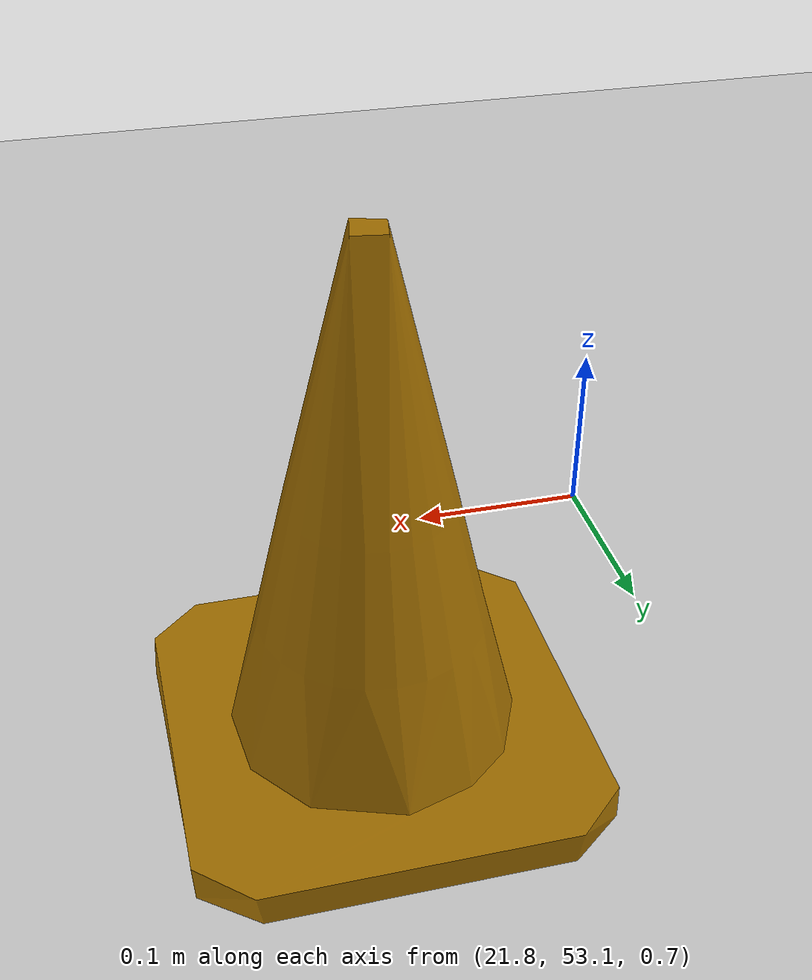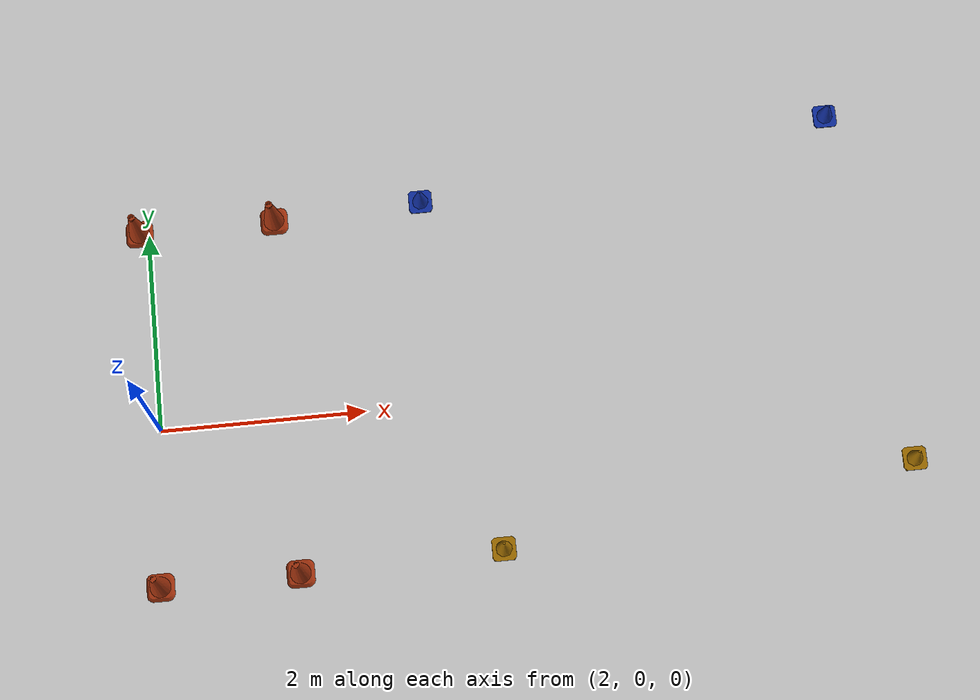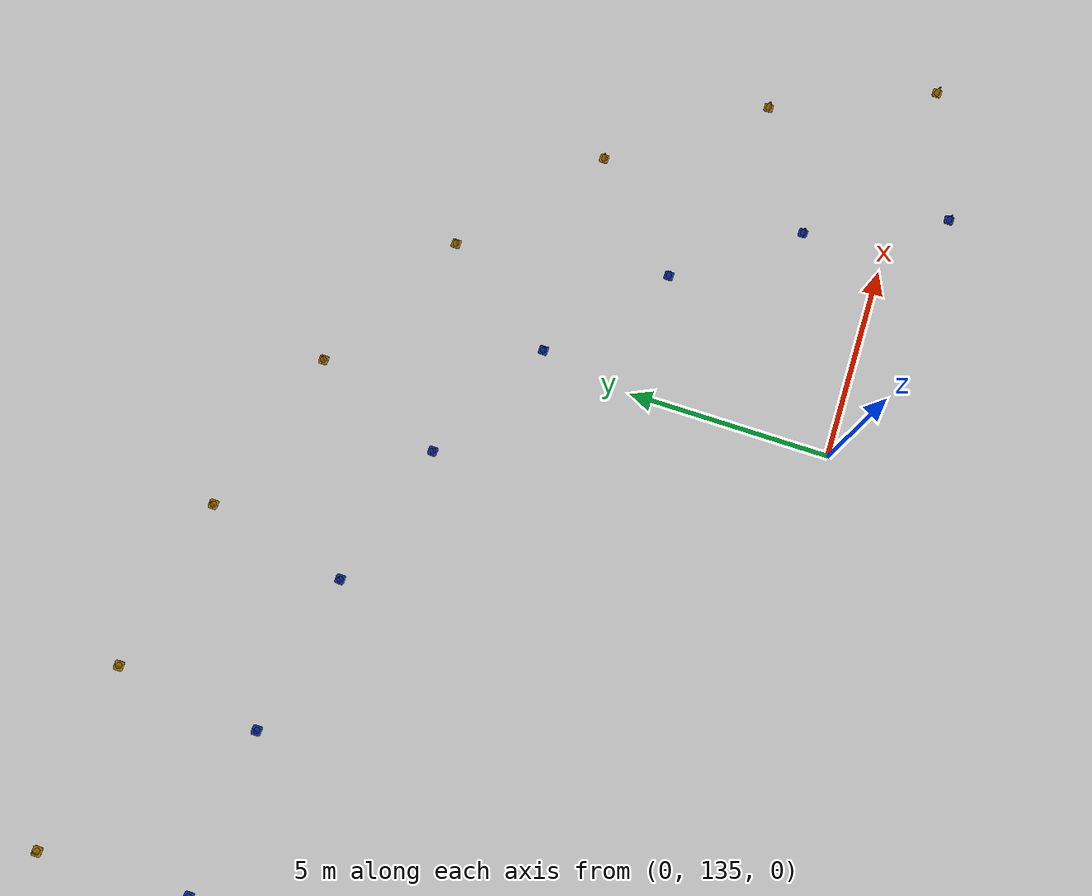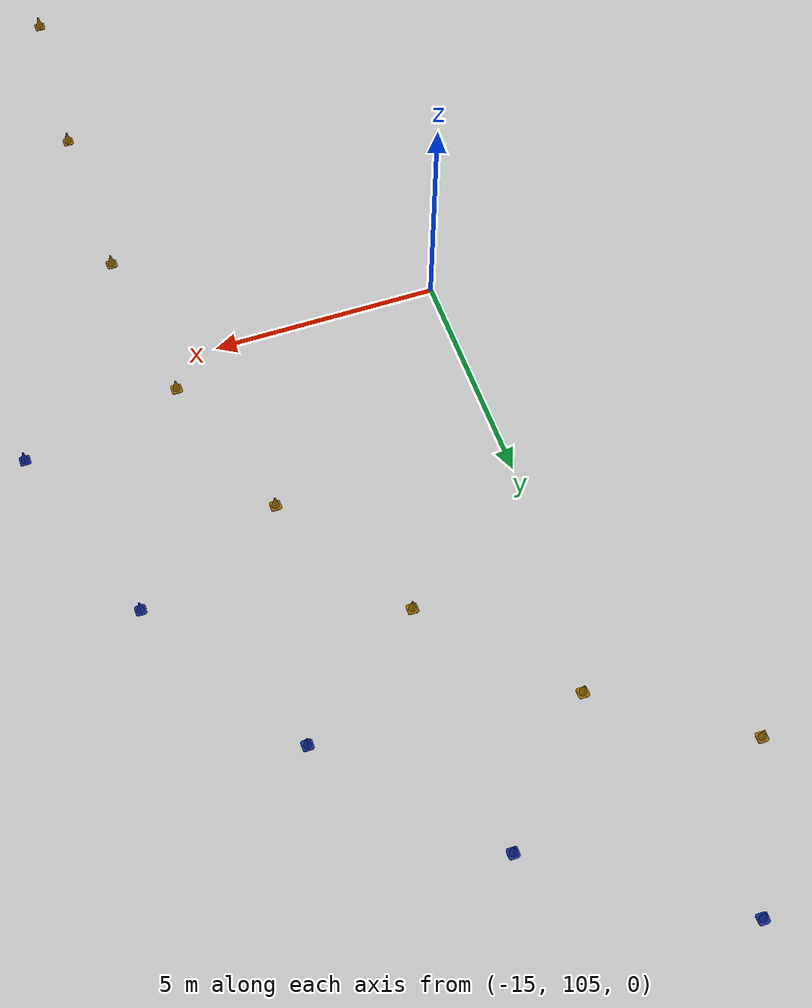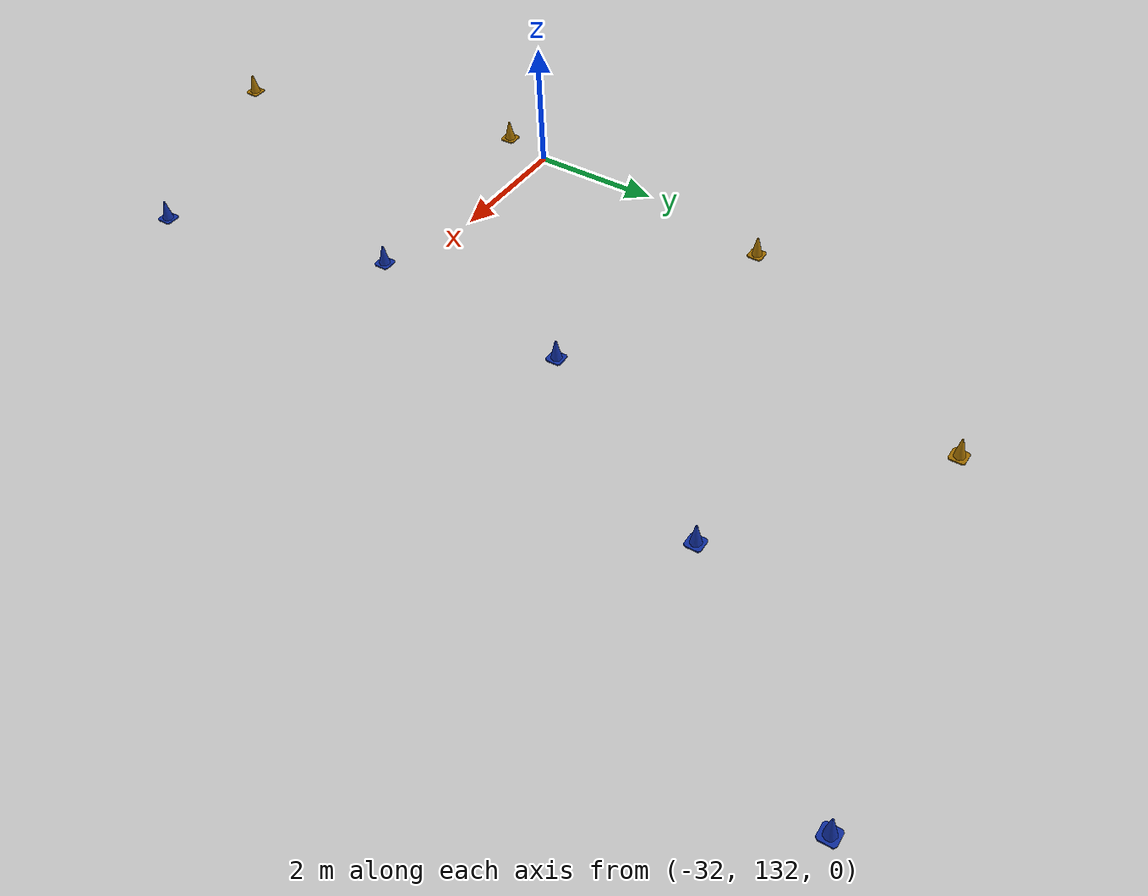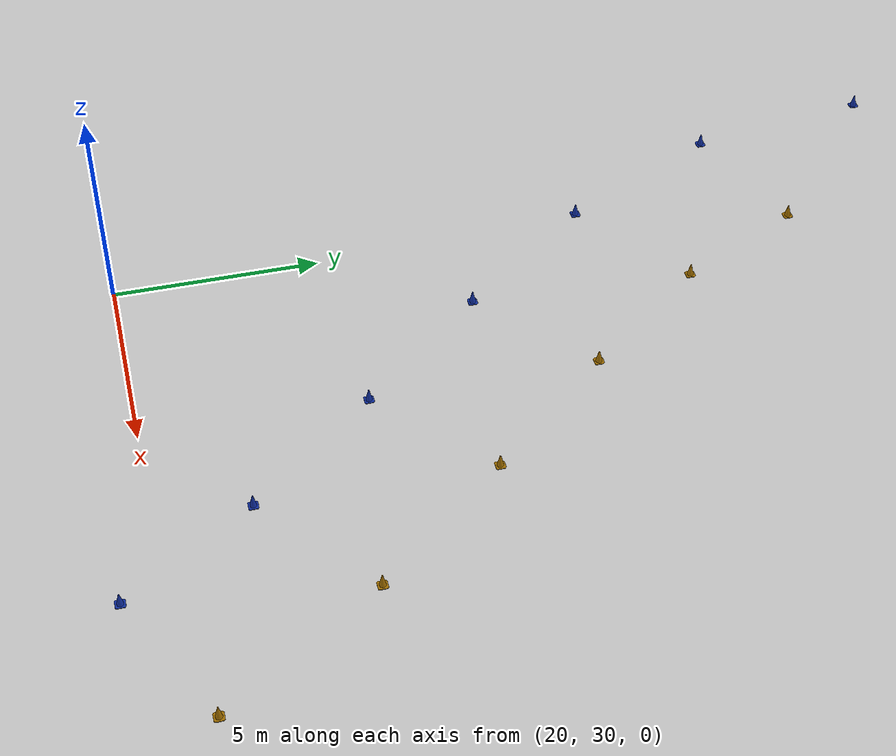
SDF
<sdf version='1.6'>
  <world name='FSDS_Training'>
    <gui fullscreen='0'>
      <camera name='user_camera'>
        <pose frame=''>-40 40 20 0 0.667643 -1</pose>
        <view_controller>orbit</view_controller>
        <projection_type>perspective</projection_type>
      </camera>
    </gui>

    <!-- WORLD SETTINGS -->
    <scene>
      <ambient>1.0 1.0 1.0 1.0</ambient>
      <shadows>false</shadows>
    </scene>

    <spherical_coordinates>
      <heading_deg>180</heading_deg>

      <!-- Appleton Tower coordinates -->
      <latitude_deg>-27.690733</latitude_deg>
      <longitude_deg>152.656715</longitude_deg>
    </spherical_coordinates>

    <light name='sun' type='directional'>
      <cast_shadows>1</cast_shadows>
      <pose frame=''>0 0 10 0 -0 0</pose>
      <diffuse>0.8 0.8 0.8 1</diffuse>
      <specular>0.1 0.1 0.1 1</specular>
      <attenuation>
        <range>1000</range>
        <constant>0.9</constant>
        <linear>0.01</linear>
        <quadratic>0.001</quadratic>
      </attenuation>
      <direction>-0.5 0.5 -1</direction>
    </light>

    <!-- MODELS -->
    <include>
      <uri>model://ground_plane</uri>
      <pose>0.0 0.0 0.0 0 0 0</pose>
    </include>

    <include>
      <uri>model://FSDS_Training</uri>
      <pose>0 0 0.5 0 0 0</pose>
    </include>

  </world>
</sdf>

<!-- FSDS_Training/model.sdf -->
<sdf version='1.6'>
  <model name='track'>

    <include>
      <pose>4.7199365234375 1.865810546875 0.15 0 0 0</pose>
      <uri>model://blue_cone</uri>
      <name>blue_cone_0</name>

      <covariance x="0.1" y="0.1" xy="0"/>

    </include>

    <include>
      <pose>8.73501953125 2.347275390625 0.15 0 0 0</pose>
      <uri>model://blue_cone</uri>
      <name>blue_cone_1</name>

      <covariance x="0.1" y="0.1" xy="0"/>

    </include>

    <include>
      <pose>12.70255859375 2.790498046875 0.15 0 0 0</pose>
      <uri>model://blue_cone</uri>
      <name>blue_cone_2</name>

      <covariance x="0.1" y="0.1" xy="0"/>

    </include>

    <include>
      <pose>16.5708349609375 3.33556640625 0.15 0 0 0</pose>
      <uri>model://blue_cone</uri>
      <name>blue_cone_3</name>

      <covariance x="0.1" y="0.1" xy="0"/>

    </include>

    <include>
      <pose>20.1275634765625 4.2570556640625 0.15 0 0 0</pose>
      <uri>model://blue_cone</uri>
      <name>blue_cone_4</name>

      <covariance x="0.1" y="0.1" xy="0"/>

    </include>

    <include>
      <pose>23.1219287109375 5.867890625 0.15 0 0 0</pose>
      <uri>model://blue_cone</uri>
      <name>blue_cone_5</name>

      <covariance x="0.1" y="0.1" xy="0"/>

    </include>

    <include>
      <pose>25.306640625 8.60666015625 0.15 0 0 0</pose>
      <uri>model://blue_cone</uri>
      <name>blue_cone_6</name>

      <covariance x="0.1" y="0.1" xy="0"/>

    </include>

    <include>
      <pose>27.43029296875 11.8647509765625 0.15 0 0 0</pose>
      <uri>model://blue_cone</uri>
      <name>blue_cone_7</name>

      <covariance x="0.1" y="0.1" xy="0"/>

    </include>

    <include>
      <pose>29.365419921875 15.2874609375 0.15 0 0 0</pose>
      <uri>model://blue_cone</uri>
      <name>blue_cone_8</name>

      <covariance x="0.1" y="0.1" xy="0"/>

    </include>

    <include>
      <pose>30.73224609375 18.5308251953125 0.15 0 0 0</pose>
      <uri>model://blue_cone</uri>
      <name>blue_cone_9</name>

      <covariance x="0.1" y="0.1" xy="0"/>

    </include>

    <include>
      <pose>31.25078125 22.247080078125 0.15 0 0 0</pose>
      <uri>model://blue_cone</uri>
      <name>blue_cone_10</name>

      <covariance x="0.1" y="0.1" xy="0"/>

    </include>

    <include>
      <pose>31.221416015625 25.808701171875 0.15 0 0 0</pose>
      <uri>model://blue_cone</uri>
      <name>blue_cone_11</name>

      <covariance x="0.1" y="0.1" xy="0"/>

    </include>

    <include>
      <pose>30.202412109375 29.126040039062502 0.15 0 0 0</pose>
      <uri>model://blue_cone</uri>
      <name>blue_cone_12</name>

      <covariance x="0.1" y="0.1" xy="0"/>

    </include>

    <include>
      <pose>28.2217529296875 32.1140869140625 0.15 0 0 0</pose>
      <uri>model://blue_cone</uri>
      <name>blue_cone_13</name>

      <covariance x="0.1" y="0.1" xy="0"/>

    </include>

    <include>
      <pose>25.69564453125 35.115224609375 0.15 0 0 0</pose>
      <uri>model://blue_cone</uri>
      <name>blue_cone_14</name>

      <covariance x="0.1" y="0.1" xy="0"/>

    </include>

    <include>
      <pose>23.0434619140625 38.1562158203125 0.15 0 0 0</pose>
      <uri>model://blue_cone</uri>
      <name>blue_cone_15</name>

      <covariance x="0.1" y="0.1" xy="0"/>

    </include>

    <include>
      <pose>20.452197265625 41.4396337890625 0.15 0 0 0</pose>
      <uri>model://blue_cone</uri>
      <name>blue_cone_16</name>

      <covariance x="0.1" y="0.1" xy="0"/>

    </include>

    <include>
      <pose>18.4306689453125 45.428120117187504 0.15 0 0 0</pose>
      <uri>model://blue_cone</uri>
      <name>blue_cone_17</name>

      <covariance x="0.1" y="0.1" xy="0"/>

    </include>

    <include>
      <pose>17.7473828125 49.9696728515625 0.15 0 0 0</pose>
      <uri>model://blue_cone</uri>
      <name>blue_cone_18</name>

      <covariance x="0.1" y="0.1" xy="0"/>

    </include>

    <include>
      <pose>18.658388671875 54.386787109375 0.15 0 0 0</pose>
      <uri>model://blue_cone</uri>
      <name>blue_cone_19</name>

      <covariance x="0.1" y="0.1" xy="0"/>

    </include>

    <include>
      <pose>21.08701171875 58.3965478515625 0.15 0 0 0</pose>
      <uri>model://blue_cone</uri>
      <name>blue_cone_20</name>

      <covariance x="0.1" y="0.1" xy="0"/>

    </include>

    <include>
      <pose>24.105087890625 61.20197265625 0.15 0 0 0</pose>
      <uri>model://blue_cone</uri>
      <name>blue_cone_21</name>

      <covariance x="0.1" y="0.1" xy="0"/>

    </include>

    <include>
      <pose>26.374111328125 63.794462890625 0.15 0 0 0</pose>
      <uri>model://blue_cone</uri>
      <name>blue_cone_22</name>

      <covariance x="0.1" y="0.1" xy="0"/>

    </include>

    <include>
      <pose>27.7843896484375 67.14495117187501 0.15 0 0 0</pose>
      <uri>model://blue_cone</uri>
      <name>blue_cone_23</name>

      <covariance x="0.1" y="0.1" xy="0"/>

    </include>

    <include>
      <pose>28.5448046875 70.68534179687501 0.15 0 0 0</pose>
      <uri>model://blue_cone</uri>
      <name>blue_cone_24</name>

      <covariance x="0.1" y="0.1" xy="0"/>

    </include>

    <include>
      <pose>28.449892578125 74.223330078125 0.15 0 0 0</pose>
      <uri>model://blue_cone</uri>
      <name>blue_cone_25</name>

      <covariance x="0.1" y="0.1" xy="0"/>

    </include>

    <include>
      <pose>27.55337890625 77.81203125 0.15 0 0 0</pose>
      <uri>model://blue_cone</uri>
      <name>blue_cone_26</name>

      <covariance x="0.1" y="0.1" xy="0"/>

    </include>

    <include>
      <pose>26.10783203125 81.2801513671875 0.15 0 0 0</pose>
      <uri>model://blue_cone</uri>
      <name>blue_cone_27</name>

      <covariance x="0.1" y="0.1" xy="0"/>

    </include>

    <include>
      <pose>24.2010400390625 84.50228515625 0.15 0 0 0</pose>
      <uri>model://blue_cone</uri>
      <name>blue_cone_28</name>

      <covariance x="0.1" y="0.1" xy="0"/>

    </include>

    <include>
      <pose>21.7993798828125 87.01824218750001 0.15 0 0 0</pose>
      <uri>model://blue_cone</uri>
      <name>blue_cone_29</name>

      <covariance x="0.1" y="0.1" xy="0"/>

    </include>

    <include>
      <pose>18.6545703125 89.285361328125 0.15 0 0 0</pose>
      <uri>model://blue_cone</uri>
      <name>blue_cone_30</name>

      <covariance x="0.1" y="0.1" xy="0"/>

    </include>

    <include>
      <pose>15.288837890625 91.772734375 0.15 0 0 0</pose>
      <uri>model://blue_cone</uri>
      <name>blue_cone_31</name>

      <covariance x="0.1" y="0.1" xy="0"/>

    </include>

    <include>
      <pose>12.321689453125 95.54033203125 0.15 0 0 0</pose>
      <uri>model://blue_cone</uri>
      <name>blue_cone_32</name>

      <covariance x="0.1" y="0.1" xy="0"/>

    </include>

    <include>
      <pose>11.898564453125 100.35666015625 0.15 0 0 0</pose>
      <uri>model://blue_cone</uri>
      <name>blue_cone_33</name>

      <covariance x="0.1" y="0.1" xy="0"/>

    </include>

    <include>
      <pose>12.5463134765625 104.283486328125 0.15 0 0 0</pose>
      <uri>model://blue_cone</uri>
      <name>blue_cone_34</name>

      <covariance x="0.1" y="0.1" xy="0"/>

    </include>

    <include>
      <pose>12.346689453125 107.514541015625 0.15 0 0 0</pose>
      <uri>model://blue_cone</uri>
      <name>blue_cone_35</name>

      <covariance x="0.1" y="0.1" xy="0"/>

    </include>

    <include>
      <pose>10.8521142578125 110.83431640625 0.15 0 0 0</pose>
      <uri>model://blue_cone</uri>
      <name>blue_cone_36</name>

      <covariance x="0.1" y="0.1" xy="0"/>

    </include>

    <include>
      <pose>8.87005859375 114.27009765625 0.15 0 0 0</pose>
      <uri>model://blue_cone</uri>
      <name>blue_cone_37</name>

      <covariance x="0.1" y="0.1" xy="0"/>

    </include>

    <include>
      <pose>6.9437500000000005 118.06314453125 0.15 0 0 0</pose>
      <uri>model://blue_cone</uri>
      <name>blue_cone_38</name>

      <covariance x="0.1" y="0.1" xy="0"/>

    </include>

    <include>
      <pose>6.160419921875 122.7333984375 0.15 0 0 0</pose>
      <uri>model://blue_cone</uri>
      <name>blue_cone_39</name>

      <covariance x="0.1" y="0.1" xy="0"/>

    </include>

    <include>
      <pose>7.030615234375 126.963974609375 0.15 0 0 0</pose>
      <uri>model://blue_cone</uri>
      <name>blue_cone_40</name>

      <covariance x="0.1" y="0.1" xy="0"/>

    </include>

    <include>
      <pose>7.445712890625 130.2384765625 0.15 0 0 0</pose>
      <uri>model://blue_cone</uri>
      <name>blue_cone_41</name>

      <covariance x="0.1" y="0.1" xy="0"/>

    </include>

    <include>
      <pose>6.585576171875 133.79384765625 0.15 0 0 0</pose>
      <uri>model://blue_cone</uri>
      <name>blue_cone_42</name>

      <covariance x="0.1" y="0.1" xy="0"/>

    </include>

    <include>
      <pose>5.1144091796875 137.14306640625 0.15 0 0 0</pose>
      <uri>model://blue_cone</uri>
      <name>blue_cone_43</name>

      <covariance x="0.1" y="0.1" xy="0"/>

    </include>

    <include>
      <pose>2.990458984375 139.96984375 0.15 0 0 0</pose>
      <uri>model://blue_cone</uri>
      <name>blue_cone_44</name>

      <covariance x="0.1" y="0.1" xy="0"/>

    </include>

    <include>
      <pose>0.198017578125 142.29603515625 0.15 0 0 0</pose>
      <uri>model://blue_cone</uri>
      <name>blue_cone_45</name>

      <covariance x="0.1" y="0.1" xy="0"/>

    </include>

    <include>
      <pose>-3.0056884765625003 144.00236328125 0.15 0 0 0</pose>
      <uri>model://blue_cone</uri>
      <name>blue_cone_46</name>

      <covariance x="0.1" y="0.1" xy="0"/>

    </include>

    <include>
      <pose>-6.5431542968750005 145.02423828125 0.15 0 0 0</pose>
      <uri>model://blue_cone</uri>
      <name>blue_cone_47</name>

      <covariance x="0.1" y="0.1" xy="0"/>

    </include>

    <include>
      <pose>-10.31059326171875 145.615126953125 0.15 0 0 0</pose>
      <uri>model://blue_cone</uri>
      <name>blue_cone_48</name>

      <covariance x="0.1" y="0.1" xy="0"/>

    </include>

    <include>
      <pose>-14.0521923828125 145.738271484375 0.15 0 0 0</pose>
      <uri>model://blue_cone</uri>
      <name>blue_cone_49</name>

      <covariance x="0.1" y="0.1" xy="0"/>

    </include>

    <include>
      <pose>-17.54117919921875 145.170927734375 0.15 0 0 0</pose>
      <uri>model://blue_cone</uri>
      <name>blue_cone_50</name>

      <covariance x="0.1" y="0.1" xy="0"/>

    </include>

    <include>
      <pose>-20.57779052734375 143.56796875 0.15 0 0 0</pose>
      <uri>model://blue_cone</uri>
      <name>blue_cone_51</name>

      <covariance x="0.1" y="0.1" xy="0"/>

    </include>

    <include>
      <pose>-23.3904736328125 141.15837890625 0.15 0 0 0</pose>
      <uri>model://blue_cone</uri>
      <name>blue_cone_52</name>

      <covariance x="0.1" y="0.1" xy="0"/>

    </include>

    <include>
      <pose>-25.8153369140625 138.32597656250002 0.15 0 0 0</pose>
      <uri>model://blue_cone</uri>
      <name>blue_cone_53</name>

      <covariance x="0.1" y="0.1" xy="0"/>

    </include>

    <include>
      <pose>-27.5546923828125 135.255400390625 0.15 0 0 0</pose>
      <uri>model://blue_cone</uri>
      <name>blue_cone_54</name>

      <covariance x="0.1" y="0.1" xy="0"/>

    </include>

    <include>
      <pose>-27.92502685546875 132.0995703125 0.15 0 0 0</pose>
      <uri>model://blue_cone</uri>
      <name>blue_cone_55</name>

      <covariance x="0.1" y="0.1" xy="0"/>

    </include>

    <include>
      <pose>-27.08601806640625 128.73185546875 0.15 0 0 0</pose>
      <uri>model://blue_cone</uri>
      <name>blue_cone_56</name>

      <covariance x="0.1" y="0.1" xy="0"/>

    </include>

    <include>
      <pose>-25.355712890625 125.64330078125 0.15 0 0 0</pose>
      <uri>model://blue_cone</uri>
      <name>blue_cone_57</name>

      <covariance x="0.1" y="0.1" xy="0"/>

    </include>

    <include>
      <pose>-22.92987060546875 123.605458984375 0.15 0 0 0</pose>
      <uri>model://blue_cone</uri>
      <name>blue_cone_58</name>

      <covariance x="0.1" y="0.1" xy="0"/>

    </include>

    <include>
      <pose>-19.4377099609375 122.1535546875 0.15 0 0 0</pose>
      <uri>model://blue_cone</uri>
      <name>blue_cone_59</name>

      <covariance x="0.1" y="0.1" xy="0"/>

    </include>

    <include>
      <pose>-15.57544921875 120.6195703125 0.15 0 0 0</pose>
      <uri>model://blue_cone</uri>
      <name>blue_cone_60</name>

      <covariance x="0.1" y="0.1" xy="0"/>

    </include>

    <include>
      <pose>-11.83870361328125 118.0626171875 0.15 0 0 0</pose>
      <uri>model://blue_cone</uri>
      <name>blue_cone_61</name>

      <covariance x="0.1" y="0.1" xy="0"/>

    </include>

    <include>
      <pose>-8.969716796875 114.857548828125 0.15 0 0 0</pose>
      <uri>model://blue_cone</uri>
      <name>blue_cone_62</name>

      <covariance x="0.1" y="0.1" xy="0"/>

    </include>

    <include>
      <pose>-6.7602197265625 111.0919140625 0.15 0 0 0</pose>
      <uri>model://blue_cone</uri>
      <name>blue_cone_63</name>

      <covariance x="0.1" y="0.1" xy="0"/>

    </include>

    <include>
      <pose>-5.4073193359375 106.95630859375 0.15 0 0 0</pose>
      <uri>model://blue_cone</uri>
      <name>blue_cone_64</name>

      <covariance x="0.1" y="0.1" xy="0"/>

    </include>

    <include>
      <pose>-4.8832373046875 102.710146484375 0.15 0 0 0</pose>
      <uri>model://blue_cone</uri>
      <name>blue_cone_65</name>

      <covariance x="0.1" y="0.1" xy="0"/>

    </include>

    <include>
      <pose>-4.8308544921875 98.56455078125 0.15 0 0 0</pose>
      <uri>model://blue_cone</uri>
      <name>blue_cone_66</name>

      <covariance x="0.1" y="0.1" xy="0"/>

    </include>

    <include>
      <pose>-5.079404296875 94.4465234375 0.15 0 0 0</pose>
      <uri>model://blue_cone</uri>
      <name>blue_cone_67</name>

      <covariance x="0.1" y="0.1" xy="0"/>

    </include>

    <include>
      <pose>-5.6530517578125 90.29958984375 0.15 0 0 0</pose>
      <uri>model://blue_cone</uri>
      <name>blue_cone_68</name>

      <covariance x="0.1" y="0.1" xy="0"/>

    </include>

    <include>
      <pose>-7.04013671875 86.097021484375 0.15 0 0 0</pose>
      <uri>model://blue_cone</uri>
      <name>blue_cone_69</name>

      <covariance x="0.1" y="0.1" xy="0"/>

    </include>

    <include>
      <pose>-9.073349609375 82.53193359375 0.15 0 0 0</pose>
      <uri>model://blue_cone</uri>
      <name>blue_cone_70</name>

      <covariance x="0.1" y="0.1" xy="0"/>

    </include>

    <include>
      <pose>-11.13505615234375 79.019853515625 0.15 0 0 0</pose>
      <uri>model://blue_cone</uri>
      <name>blue_cone_71</name>

      <covariance x="0.1" y="0.1" xy="0"/>

    </include>

    <include>
      <pose>-13.4158203125 75.64446289062501 0.15 0 0 0</pose>
      <uri>model://blue_cone</uri>
      <name>blue_cone_72</name>

      <covariance x="0.1" y="0.1" xy="0"/>

    </include>

    <include>
      <pose>-15.687275390625 72.361728515625 0.15 0 0 0</pose>
      <uri>model://blue_cone</uri>
      <name>blue_cone_73</name>

      <covariance x="0.1" y="0.1" xy="0"/>

    </include>

    <include>
      <pose>-17.826015625 69.0785009765625 0.15 0 0 0</pose>
      <uri>model://blue_cone</uri>
      <name>blue_cone_74</name>

      <covariance x="0.1" y="0.1" xy="0"/>

    </include>

    <include>
      <pose>-19.65059326171875 65.7472412109375 0.15 0 0 0</pose>
      <uri>model://blue_cone</uri>
      <name>blue_cone_75</name>

      <covariance x="0.1" y="0.1" xy="0"/>

    </include>

    <include>
      <pose>-20.84695556640625 62.27077148437501 0.15 0 0 0</pose>
      <uri>model://blue_cone</uri>
      <name>blue_cone_76</name>

      <covariance x="0.1" y="0.1" xy="0"/>

    </include>

    <include>
      <pose>-21.46326904296875 58.643515625 0.15 0 0 0</pose>
      <uri>model://blue_cone</uri>
      <name>blue_cone_77</name>

      <covariance x="0.1" y="0.1" xy="0"/>

    </include>

    <include>
      <pose>-21.3473388671875 55.0314697265625 0.15 0 0 0</pose>
      <uri>model://blue_cone</uri>
      <name>blue_cone_78</name>

      <covariance x="0.1" y="0.1" xy="0"/>

    </include>

    <include>
      <pose>-20.467390136718752 51.4946923828125 0.15 0 0 0</pose>
      <uri>model://blue_cone</uri>
      <name>blue_cone_79</name>

      <covariance x="0.1" y="0.1" xy="0"/>

    </include>

    <include>
      <pose>-18.82724365234375 48.379291992187504 0.15 0 0 0</pose>
      <uri>model://blue_cone</uri>
      <name>blue_cone_80</name>

      <covariance x="0.1" y="0.1" xy="0"/>

    </include>

    <include>
      <pose>-16.4640966796875 45.376376953125 0.15 0 0 0</pose>
      <uri>model://blue_cone</uri>
      <name>blue_cone_81</name>

      <covariance x="0.1" y="0.1" xy="0"/>

    </include>

    <include>
      <pose>-13.831442871093753 42.39787109375 0.15 0 0 0</pose>
      <uri>model://blue_cone</uri>
      <name>blue_cone_82</name>

      <covariance x="0.1" y="0.1" xy="0"/>

    </include>

    <include>
      <pose>-11.158642578125 39.2371435546875 0.15 0 0 0</pose>
      <uri>model://blue_cone</uri>
      <name>blue_cone_83</name>

      <covariance x="0.1" y="0.1" xy="0"/>

    </include>

    <include>
      <pose>-8.90455078125 35.5966552734375 0.15 0 0 0</pose>
      <uri>model://blue_cone</uri>
      <name>blue_cone_84</name>

      <covariance x="0.1" y="0.1" xy="0"/>

    </include>

    <include>
      <pose>-7.3970556640625 31.2394580078125 0.15 0 0 0</pose>
      <uri>model://blue_cone</uri>
      <name>blue_cone_85</name>

      <covariance x="0.1" y="0.1" xy="0"/>

    </include>

    <include>
      <pose>-7.3937109375 26.979555664062502 0.15 0 0 0</pose>
      <uri>model://blue_cone</uri>
      <name>blue_cone_86</name>

      <covariance x="0.1" y="0.1" xy="0"/>

    </include>

    <include>
      <pose>-8.082978515625 22.7198681640625 0.15 0 0 0</pose>
      <uri>model://blue_cone</uri>
      <name>blue_cone_87</name>

      <covariance x="0.1" y="0.1" xy="0"/>

    </include>

    <include>
      <pose>-9.07950927734375 18.7959912109375 0.15 0 0 0</pose>
      <uri>model://blue_cone</uri>
      <name>blue_cone_88</name>

      <covariance x="0.1" y="0.1" xy="0"/>

    </include>

    <include>
      <pose>-10.07734375 14.937138671875 0.15 0 0 0</pose>
      <uri>model://blue_cone</uri>
      <name>blue_cone_89</name>

      <covariance x="0.1" y="0.1" xy="0"/>

    </include>

    <include>
      <pose>-10.88643310546875 11.145185546875 0.15 0 0 0</pose>
      <uri>model://blue_cone</uri>
      <name>blue_cone_90</name>

      <covariance x="0.1" y="0.1" xy="0"/>

    </include>

    <include>
      <pose>-11.189196777343753 7.529160156250001 0.15 0 0 0</pose>
      <uri>model://blue_cone</uri>
      <name>blue_cone_91</name>

      <covariance x="0.1" y="0.1" xy="0"/>

    </include>

    <include>
      <pose>-10.22020751953125 4.9916650390625 0.15 0 0 0</pose>
      <uri>model://blue_cone</uri>
      <name>blue_cone_92</name>

      <covariance x="0.1" y="0.1" xy="0"/>

    </include>

    <include>
      <pose>-7.5500830078125 3.2008593750000003 0.15 0 0 0</pose>
      <uri>model://blue_cone</uri>
      <name>blue_cone_93</name>

      <covariance x="0.1" y="0.1" xy="0"/>

    </include>

    <include>
      <pose>-4.0830126953125 2.174306640625 0.15 0 0 0</pose>
      <uri>model://blue_cone</uri>
      <name>blue_cone_94</name>

      <covariance x="0.1" y="0.1" xy="0"/>

    </include>

    <include>
      <pose>-0.3642138671875 1.758974609375 0.15 0 0 0</pose>
      <uri>model://blue_cone</uri>
      <name>blue_cone_95</name>

      <covariance x="0.1" y="0.1" xy="0"/>

    </include>

    <include>
      <pose>5.1939501953125005 -1.601943359375 0.15 0 0 0</pose>
      <uri>model://yellow_cone</uri>
      <name>yellow_cone_96</name>

      <covariance x="0.1" y="0.1" xy="0"/>

    </include>

    <include>
      <pose>9.11828125 -1.131669921875 0.15 0 0 0</pose>
      <uri>model://yellow_cone</uri>
      <name>yellow_cone_97</name>

      <covariance x="0.1" y="0.1" xy="0"/>

    </include>

    <include>
      <pose>13.11546875 -0.685068359375 0.15 0 0 0</pose>
      <uri>model://yellow_cone</uri>
      <name>yellow_cone_98</name>

      <covariance x="0.1" y="0.1" xy="0"/>

    </include>

    <include>
      <pose>17.177377929687502 -0.111484375 0.15 0 0 0</pose>
      <uri>model://yellow_cone</uri>
      <name>yellow_cone_99</name>

      <covariance x="0.1" y="0.1" xy="0"/>

    </include>

    <include>
      <pose>21.3346435546875 0.971787109375 0.15 0 0 0</pose>
      <uri>model://yellow_cone</uri>
      <name>yellow_cone_100</name>

      <covariance x="0.1" y="0.1" xy="0"/>

    </include>

    <include>
      <pose>25.3476220703125 3.166728515625 0.15 0 0 0</pose>
      <uri>model://yellow_cone</uri>
      <name>yellow_cone_101</name>

      <covariance x="0.1" y="0.1" xy="0"/>

    </include>

    <include>
      <pose>28.18021484375 6.608515625 0.15 0 0 0</pose>
      <uri>model://yellow_cone</uri>
      <name>yellow_cone_102</name>

      <covariance x="0.1" y="0.1" xy="0"/>

    </include>

    <include>
      <pose>30.42958984375 10.0607958984375 0.15 0 0 0</pose>
      <uri>model://yellow_cone</uri>
      <name>yellow_cone_103</name>

      <covariance x="0.1" y="0.1" xy="0"/>

    </include>

    <include>
      <pose>32.428017578125 13.593203125 0.15 0 0 0</pose>
      <uri>model://yellow_cone</uri>
      <name>yellow_cone_104</name>

      <covariance x="0.1" y="0.1" xy="0"/>

    </include>

    <include>
      <pose>34.13208984375 17.699506835937502 0.15 0 0 0</pose>
      <uri>model://yellow_cone</uri>
      <name>yellow_cone_105</name>

      <covariance x="0.1" y="0.1" xy="0"/>

    </include>

    <include>
      <pose>34.7340234375 21.905009765625 0.15 0 0 0</pose>
      <uri>model://yellow_cone</uri>
      <name>yellow_cone_106</name>

      <covariance x="0.1" y="0.1" xy="0"/>

    </include>

    <include>
      <pose>34.684599609375 26.315029296875 0.15 0 0 0</pose>
      <uri>model://yellow_cone</uri>
      <name>yellow_cone_107</name>

      <covariance x="0.1" y="0.1" xy="0"/>

    </include>

    <include>
      <pose>33.36578125 30.6237353515625 0.15 0 0 0</pose>
      <uri>model://yellow_cone</uri>
      <name>yellow_cone_108</name>

      <covariance x="0.1" y="0.1" xy="0"/>

    </include>

    <include>
      <pose>30.9718408203125 34.2790380859375 0.15 0 0 0</pose>
      <uri>model://yellow_cone</uri>
      <name>yellow_cone_109</name>

      <covariance x="0.1" y="0.1" xy="0"/>

    </include>

    <include>
      <pose>28.33009765625 37.4194921875 0.15 0 0 0</pose>
      <uri>model://yellow_cone</uri>
      <name>yellow_cone_110</name>

      <covariance x="0.1" y="0.1" xy="0"/>

    </include>

    <include>
      <pose>25.706586914062505 40.4272900390625 0.15 0 0 0</pose>
      <uri>model://yellow_cone</uri>
      <name>yellow_cone_111</name>

      <covariance x="0.1" y="0.1" xy="0"/>

    </include>

    <include>
      <pose>23.32220703125 43.4428955078125 0.15 0 0 0</pose>
      <uri>model://yellow_cone</uri>
      <name>yellow_cone_112</name>

      <covariance x="0.1" y="0.1" xy="0"/>

    </include>

    <include>
      <pose>21.7529638671875 46.5291845703125 0.15 0 0 0</pose>
      <uri>model://yellow_cone</uri>
      <name>yellow_cone_113</name>

      <covariance x="0.1" y="0.1" xy="0"/>

    </include>

    <include>
      <pose>21.245048828125 49.8419677734375 0.15 0 0 0</pose>
      <uri>model://yellow_cone</uri>
      <name>yellow_cone_114</name>

      <covariance x="0.1" y="0.1" xy="0"/>

    </include>

    <include>
      <pose>21.95912109375 53.222666015625 0.15 0 0 0</pose>
      <uri>model://yellow_cone</uri>
      <name>yellow_cone_115</name>

      <covariance x="0.1" y="0.1" xy="0"/>

    </include>

    <include>
      <pose>23.622451171875 55.9837548828125 0.15 0 0 0</pose>
      <uri>model://yellow_cone</uri>
      <name>yellow_cone_116</name>

      <covariance x="0.1" y="0.1" xy="0"/>

    </include>

    <include>
      <pose>26.474248046875 58.62572265625 0.15 0 0 0</pose>
      <uri>model://yellow_cone</uri>
      <name>yellow_cone_117</name>

      <covariance x="0.1" y="0.1" xy="0"/>

    </include>

    <include>
      <pose>29.4174609375 62.06586914062501 0.15 0 0 0</pose>
      <uri>model://yellow_cone</uri>
      <name>yellow_cone_118</name>

      <covariance x="0.1" y="0.1" xy="0"/>

    </include>

    <include>
      <pose>31.1143408203125 66.067265625 0.15 0 0 0</pose>
      <uri>model://yellow_cone</uri>
      <name>yellow_cone_119</name>

      <covariance x="0.1" y="0.1" xy="0"/>

    </include>

    <include>
      <pose>32.027265625 70.33538085937501 0.15 0 0 0</pose>
      <uri>model://yellow_cone</uri>
      <name>yellow_cone_120</name>

      <covariance x="0.1" y="0.1" xy="0"/>

    </include>

    <include>
      <pose>31.908837890625 74.75785156250001 0.15 0 0 0</pose>
      <uri>model://yellow_cone</uri>
      <name>yellow_cone_121</name>

      <covariance x="0.1" y="0.1" xy="0"/>

    </include>

    <include>
      <pose>30.8703515625 78.9290234375 0.15 0 0 0</pose>
      <uri>model://yellow_cone</uri>
      <name>yellow_cone_122</name>

      <covariance x="0.1" y="0.1" xy="0"/>

    </include>

    <include>
      <pose>29.238671875 82.844716796875 0.15 0 0 0</pose>
      <uri>model://yellow_cone</uri>
      <name>yellow_cone_123</name>

      <covariance x="0.1" y="0.1" xy="0"/>

    </include>

    <include>
      <pose>27.0708935546875 86.50576171875001 0.15 0 0 0</pose>
      <uri>model://yellow_cone</uri>
      <name>yellow_cone_124</name>

      <covariance x="0.1" y="0.1" xy="0"/>

    </include>

    <include>
      <pose>23.9907958984375 89.74728515625 0.15 0 0 0</pose>
      <uri>model://yellow_cone</uri>
      <name>yellow_cone_125</name>

      <covariance x="0.1" y="0.1" xy="0"/>

    </include>

    <include>
      <pose>20.6384765625 92.168779296875 0.15 0 0 0</pose>
      <uri>model://yellow_cone</uri>
      <name>yellow_cone_126</name>

      <covariance x="0.1" y="0.1" xy="0"/>

    </include>

    <include>
      <pose>17.552734375 94.441953125 0.15 0 0 0</pose>
      <uri>model://yellow_cone</uri>
      <name>yellow_cone_127</name>

      <covariance x="0.1" y="0.1" xy="0"/>

    </include>

    <include>
      <pose>15.56791015625 96.84876953125 0.15 0 0 0</pose>
      <uri>model://yellow_cone</uri>
      <name>yellow_cone_128</name>

      <covariance x="0.1" y="0.1" xy="0"/>

    </include>

    <include>
      <pose>15.368212890625 99.89673828125 0.15 0 0 0</pose>
      <uri>model://yellow_cone</uri>
      <name>yellow_cone_129</name>

      <covariance x="0.1" y="0.1" xy="0"/>

    </include>

    <include>
      <pose>16.0212744140625 103.865576171875 0.15 0 0 0</pose>
      <uri>model://yellow_cone</uri>
      <name>yellow_cone_130</name>

      <covariance x="0.1" y="0.1" xy="0"/>

    </include>

    <include>
      <pose>15.695595703125 108.531826171875 0.15 0 0 0</pose>
      <uri>model://yellow_cone</uri>
      <name>yellow_cone_131</name>

      <covariance x="0.1" y="0.1" xy="0"/>

    </include>

    <include>
      <pose>13.9218994140625 112.51552734375 0.15 0 0 0</pose>
      <uri>model://yellow_cone</uri>
      <name>yellow_cone_132</name>

      <covariance x="0.1" y="0.1" xy="0"/>

    </include>

    <include>
      <pose>11.902314453125 116.01806640625 0.15 0 0 0</pose>
      <uri>model://yellow_cone</uri>
      <name>yellow_cone_133</name>

      <covariance x="0.1" y="0.1" xy="0"/>

    </include>

    <include>
      <pose>10.19275390625 119.36466796875 0.15 0 0 0</pose>
      <uri>model://yellow_cone</uri>
      <name>yellow_cone_134</name>

      <covariance x="0.1" y="0.1" xy="0"/>

    </include>

    <include>
      <pose>9.651650390625 122.4857421875 0.15 0 0 0</pose>
      <uri>model://yellow_cone</uri>
      <name>yellow_cone_135</name>

      <covariance x="0.1" y="0.1" xy="0"/>

    </include>

    <include>
      <pose>10.4155078125 126.073740234375 0.15 0 0 0</pose>
      <uri>model://yellow_cone</uri>
      <name>yellow_cone_136</name>

      <covariance x="0.1" y="0.1" xy="0"/>

    </include>

    <include>
      <pose>10.91673828125 130.687890625 0.15 0 0 0</pose>
      <uri>model://yellow_cone</uri>
      <name>yellow_cone_137</name>

      <covariance x="0.1" y="0.1" xy="0"/>

    </include>

    <include>
      <pose>9.90564453125 134.90162109375 0.15 0 0 0</pose>
      <uri>model://yellow_cone</uri>
      <name>yellow_cone_138</name>

      <covariance x="0.1" y="0.1" xy="0"/>

    </include>

    <include>
      <pose>8.1596044921875 138.8683984375 0.15 0 0 0</pose>
      <uri>model://yellow_cone</uri>
      <name>yellow_cone_139</name>

      <covariance x="0.1" y="0.1" xy="0"/>

    </include>

    <include>
      <pose>5.495419921875 142.4142578125 0.15 0 0 0</pose>
      <uri>model://yellow_cone</uri>
      <name>yellow_cone_140</name>

      <covariance x="0.1" y="0.1" xy="0"/>

    </include>

    <include>
      <pose>2.1529296875 145.19919921875 0.15 0 0 0</pose>
      <uri>model://yellow_cone</uri>
      <name>yellow_cone_141</name>

      <covariance x="0.1" y="0.1" xy="0"/>

    </include>

    <include>
      <pose>-1.6937353515625 147.24716796875 0.15 0 0 0</pose>
      <uri>model://yellow_cone</uri>
      <name>yellow_cone_142</name>

      <covariance x="0.1" y="0.1" xy="0"/>

    </include>

    <include>
      <pose>-5.825302734375 148.44982421875 0.15 0 0 0</pose>
      <uri>model://yellow_cone</uri>
      <name>yellow_cone_143</name>

      <covariance x="0.1" y="0.1" xy="0"/>

    </include>

    <include>
      <pose>-9.957785644531253 149.097294921875 0.15 0 0 0</pose>
      <uri>model://yellow_cone</uri>
      <name>yellow_cone_144</name>

      <covariance x="0.1" y="0.1" xy="0"/>

    </include>

    <include>
      <pose>-14.2170947265625 149.234384765625 0.15 0 0 0</pose>
      <uri>model://yellow_cone</uri>
      <name>yellow_cone_145</name>

      <covariance x="0.1" y="0.1" xy="0"/>

    </include>

    <include>
      <pose>-18.60007080078125 148.506904296875 0.15 0 0 0</pose>
      <uri>model://yellow_cone</uri>
      <name>yellow_cone_146</name>

      <covariance x="0.1" y="0.1" xy="0"/>

    </include>

    <include>
      <pose>-22.60933837890625 146.41802734375 0.15 0 0 0</pose>
      <uri>model://yellow_cone</uri>
      <name>yellow_cone_147</name>

      <covariance x="0.1" y="0.1" xy="0"/>

    </include>

    <include>
      <pose>-25.8701513671875 143.6284375 0.15 0 0 0</pose>
      <uri>model://yellow_cone</uri>
      <name>yellow_cone_148</name>

      <covariance x="0.1" y="0.1" xy="0"/>

    </include>

    <include>
      <pose>-28.649057617187506 140.38025390625 0.15 0 0 0</pose>
      <uri>model://yellow_cone</uri>
      <name>yellow_cone_149</name>

      <covariance x="0.1" y="0.1" xy="0"/>

    </include>

    <include>
      <pose>-30.834541015625 136.477119140625 0.15 0 0 0</pose>
      <uri>model://yellow_cone</uri>
      <name>yellow_cone_150</name>

      <covariance x="0.1" y="0.1" xy="0"/>

    </include>

    <include>
      <pose>-31.411772460937502 131.79525390625 0.15 0 0 0</pose>
      <uri>model://yellow_cone</uri>
      <name>yellow_cone_151</name>

      <covariance x="0.1" y="0.1" xy="0"/>

    </include>

    <include>
      <pose>-30.332319335937505 127.42361328125 0.15 0 0 0</pose>
      <uri>model://yellow_cone</uri>
      <name>yellow_cone_152</name>

      <covariance x="0.1" y="0.1" xy="0"/>

    </include>

    <include>
      <pose>-28.1586474609375 123.5472265625 0.15 0 0 0</pose>
      <uri>model://yellow_cone</uri>
      <name>yellow_cone_153</name>

      <covariance x="0.1" y="0.1" xy="0"/>

    </include>

    <include>
      <pose>-24.54880615234375 120.502392578125 0.15 0 0 0</pose>
      <uri>model://yellow_cone</uri>
      <name>yellow_cone_154</name>

      <covariance x="0.1" y="0.1" xy="0"/>

    </include>

    <include>
      <pose>-20.6457470703125 118.8686328125 0.15 0 0 0</pose>
      <uri>model://yellow_cone</uri>
      <name>yellow_cone_155</name>

      <covariance x="0.1" y="0.1" xy="0"/>

    </include>

    <include>
      <pose>-17.06205078125 117.4509765625 0.15 0 0 0</pose>
      <uri>model://yellow_cone</uri>
      <name>yellow_cone_156</name>

      <covariance x="0.1" y="0.1" xy="0"/>

    </include>

    <include>
      <pose>-14.24174560546875 115.5179296875 0.15 0 0 0</pose>
      <uri>model://yellow_cone</uri>
      <name>yellow_cone_157</name>

      <covariance x="0.1" y="0.1" xy="0"/>

    </include>

    <include>
      <pose>-11.78265380859375 112.774912109375 0.15 0 0 0</pose>
      <uri>model://yellow_cone</uri>
      <name>yellow_cone_158</name>

      <covariance x="0.1" y="0.1" xy="0"/>

    </include>

    <include>
      <pose>-9.95374267578125 109.6596484375 0.15 0 0 0</pose>
      <uri>model://yellow_cone</uri>
      <name>yellow_cone_159</name>

      <covariance x="0.1" y="0.1" xy="0"/>

    </include>

    <include>
      <pose>-8.8313134765625 106.230859375 0.15 0 0 0</pose>
      <uri>model://yellow_cone</uri>
      <name>yellow_cone_160</name>

      <covariance x="0.1" y="0.1" xy="0"/>

    </include>

    <include>
      <pose>-8.3776416015625 102.512333984375 0.15 0 0 0</pose>
      <uri>model://yellow_cone</uri>
      <name>yellow_cone_161</name>

      <covariance x="0.1" y="0.1" xy="0"/>

    </include>

    <include>
      <pose>-8.3296533203125 98.6563671875 0.15 0 0 0</pose>
      <uri>model://yellow_cone</uri>
      <name>yellow_cone_162</name>

      <covariance x="0.1" y="0.1" xy="0"/>

    </include>

    <include>
      <pose>-8.56380859375 94.7765625 0.15 0 0 0</pose>
      <uri>model://yellow_cone</uri>
      <name>yellow_cone_163</name>

      <covariance x="0.1" y="0.1" xy="0"/>

    </include>

    <include>
      <pose>-9.0865673828125 90.97853515625 0.15 0 0 0</pose>
      <uri>model://yellow_cone</uri>
      <name>yellow_cone_164</name>

      <covariance x="0.1" y="0.1" xy="0"/>

    </include>

    <include>
      <pose>-10.17820556640625 87.647021484375 0.15 0 0 0</pose>
      <uri>model://yellow_cone</uri>
      <name>yellow_cone_165</name>

      <covariance x="0.1" y="0.1" xy="0"/>

    </include>

    <include>
      <pose>-12.093896484375 84.30005859375 0.15 0 0 0</pose>
      <uri>model://yellow_cone</uri>
      <name>yellow_cone_166</name>

      <covariance x="0.1" y="0.1" xy="0"/>

    </include>

    <include>
      <pose>-14.08152587890625 80.90884765625 0.15 0 0 0</pose>
      <uri>model://yellow_cone</uri>
      <name>yellow_cone_167</name>

      <covariance x="0.1" y="0.1" xy="0"/>

    </include>

    <include>
      <pose>-16.290048828125002 77.641669921875 0.15 0 0 0</pose>
      <uri>model://yellow_cone</uri>
      <name>yellow_cone_168</name>

      <covariance x="0.1" y="0.1" xy="0"/>

    </include>

    <include>
      <pose>-18.58109375 74.330439453125 0.15 0 0 0</pose>
      <uri>model://yellow_cone</uri>
      <name>yellow_cone_169</name>

      <covariance x="0.1" y="0.1" xy="0"/>

    </include>

    <include>
      <pose>-20.8101123046875 70.9074755859375 0.15 0 0 0</pose>
      <uri>model://yellow_cone</uri>
      <name>yellow_cone_170</name>

      <covariance x="0.1" y="0.1" xy="0"/>

    </include>

    <include>
      <pose>-22.82635009765625 67.2184912109375 0.15 0 0 0</pose>
      <uri>model://yellow_cone</uri>
      <name>yellow_cone_171</name>

      <covariance x="0.1" y="0.1" xy="0"/>

    </include>

    <include>
      <pose>-24.23694580078125 63.14138671875 0.15 0 0 0</pose>
      <uri>model://yellow_cone</uri>
      <name>yellow_cone_172</name>

      <covariance x="0.1" y="0.1" xy="0"/>

    </include>

    <include>
      <pose>-24.953493652343752 58.9048828125 0.15 0 0 0</pose>
      <uri>model://yellow_cone</uri>
      <name>yellow_cone_173</name>

      <covariance x="0.1" y="0.1" xy="0"/>

    </include>

    <include>
      <pose>-24.8124560546875 54.5385595703125 0.15 0 0 0</pose>
      <uri>model://yellow_cone</uri>
      <name>yellow_cone_174</name>

      <covariance x="0.1" y="0.1" xy="0"/>

    </include>

    <include>
      <pose>-23.76963134765625 50.334858398437504 0.15 0 0 0</pose>
      <uri>model://yellow_cone</uri>
      <name>yellow_cone_175</name>

      <covariance x="0.1" y="0.1" xy="0"/>

    </include>

    <include>
      <pose>-21.70448974609375 46.386440429687504 0.15 0 0 0</pose>
      <uri>model://yellow_cone</uri>
      <name>yellow_cone_176</name>

      <covariance x="0.1" y="0.1" xy="0"/>

    </include>

    <include>
      <pose>-19.12173828125 43.0988916015625 0.15 0 0 0</pose>
      <uri>model://yellow_cone</uri>
      <name>yellow_cone_177</name>

      <covariance x="0.1" y="0.1" xy="0"/>

    </include>

    <include>
      <pose>-16.44579345703125 40.0708203125 0.15 0 0 0</pose>
      <uri>model://yellow_cone</uri>
      <name>yellow_cone_178</name>

      <covariance x="0.1" y="0.1" xy="0"/>

    </include>

    <include>
      <pose>-13.932890625 37.103237304687504 0.15 0 0 0</pose>
      <uri>model://yellow_cone</uri>
      <name>yellow_cone_179</name>

      <covariance x="0.1" y="0.1" xy="0"/>

    </include>

    <include>
      <pose>-11.99161376953125 33.947407226562504 0.15 0 0 0</pose>
      <uri>model://yellow_cone</uri>
      <name>yellow_cone_180</name>

      <covariance x="0.1" y="0.1" xy="0"/>

    </include>

    <include>
      <pose>-10.8788232421875 30.8826611328125 0.15 0 0 0</pose>
      <uri>model://yellow_cone</uri>
      <name>yellow_cone_181</name>

      <covariance x="0.1" y="0.1" xy="0"/>

    </include>

    <include>
      <pose>-10.890615234375 27.1267919921875 0.15 0 0 0</pose>
      <uri>model://yellow_cone</uri>
      <name>yellow_cone_182</name>

      <covariance x="0.1" y="0.1" xy="0"/>

    </include>

    <include>
      <pose>-11.4923046875 23.5113818359375 0.15 0 0 0</pose>
      <uri>model://yellow_cone</uri>
      <name>yellow_cone_183</name>

      <covariance x="0.1" y="0.1" xy="0"/>

    </include>

    <include>
      <pose>-12.46296142578125 19.6916845703125 0.15 0 0 0</pose>
      <uri>model://yellow_cone</uri>
      <name>yellow_cone_184</name>

      <covariance x="0.1" y="0.1" xy="0"/>

    </include>

    <include>
      <pose>-13.476962890625 15.76935546875 0.15 0 0 0</pose>
      <uri>model://yellow_cone</uri>
      <name>yellow_cone_185</name>

      <covariance x="0.1" y="0.1" xy="0"/>

    </include>

    <include>
      <pose>-14.33715087890625 11.73044921875 0.15 0 0 0</pose>
      <uri>model://yellow_cone</uri>
      <name>yellow_cone_186</name>

      <covariance x="0.1" y="0.1" xy="0"/>

    </include>

    <include>
      <pose>-14.68467041015625 7.351171875 0.15 0 0 0</pose>
      <uri>model://yellow_cone</uri>
      <name>yellow_cone_187</name>

      <covariance x="0.1" y="0.1" xy="0"/>

    </include>

    <include>
      <pose>-12.83394287109375 2.663916015625 0.15 0 0 0</pose>
      <uri>model://yellow_cone</uri>
      <name>yellow_cone_188</name>

      <covariance x="0.1" y="0.1" xy="0"/>

    </include>

    <include>
      <pose>-8.9387060546875 -0.01189453125 0.15 0 0 0</pose>
      <uri>model://yellow_cone</uri>
      <name>yellow_cone_189</name>

      <covariance x="0.1" y="0.1" xy="0"/>

    </include>

    <include>
      <pose>-4.7421826171875 -1.263056640625 0.15 0 0 0</pose>
      <uri>model://yellow_cone</uri>
      <name>yellow_cone_190</name>

      <covariance x="0.1" y="0.1" xy="0"/>

    </include>

    <include>
      <pose>-0.4939794921875 -1.738623046875 0.15 0 0 0</pose>
      <uri>model://yellow_cone</uri>
      <name>yellow_cone_191</name>

      <covariance x="0.1" y="0.1" xy="0"/>

    </include>

    <include>
      <pose>1.9965478515625 1.80806640625 0.15 0 0 0</pose>
      <uri>model://big_cone</uri>
      <name>big_cone_192</name>

      <covariance x="0.1" y="0.1" xy="0"/>

    </include>

    <include>
      <pose>1.9965478515625 -1.64458984375 0.15 0 0 0</pose>
      <uri>model://big_cone</uri>
      <name>big_cone_193</name>

      <covariance x="0.1" y="0.1" xy="0"/>

    </include>

    <include>
      <pose>3.2965478515625 -1.64458984375 0.15 0 0 0</pose>
      <uri>model://big_cone</uri>
      <name>big_cone_194</name>

      <covariance x="0.1" y="0.1" xy="0"/>

    </include>

    <include>
      <pose>3.2965478515625 1.80806640625 0.15 0 0 0</pose>
      <uri>model://big_cone</uri>
      <name>big_cone_195</name>

      <covariance x="0.1" y="0.1" xy="0"/>

    </include>

    <static>0</static>
    <allow_auto_disable>1</allow_auto_disable>
  </model>
</sdf>

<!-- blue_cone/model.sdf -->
<sdf version='1.6'>
  <model name='blue_cone'>
    <link name='link'>
      <pose frame=''>0 0 0 0 0 0</pose>
      <inertial>
        <inertia>
          <ixx>0.0016</ixx>
          <ixy>0</ixy>
          <ixz>0</ixz>
          <iyy>0.0016</iyy>
          <iyz>0</iyz>
          <izz>0.0010</izz>
        </inertia>
        <mass>0.45</mass>
      </inertial>
      <visual name='visual'>
        <geometry>
          <mesh>
            <uri>model://cone_blue.dae</uri>
          </mesh>
        </geometry>
        <cast_shadows>1</cast_shadows>
      </visual>
      <collision name='collision'>
        <max_contacts>3</max_contacts>
        <geometry>
          <mesh>
            <uri>model://cone_blue.dae</uri>
          </mesh>
        </geometry>
      </collision>
    </link>
  </model>
</sdf>

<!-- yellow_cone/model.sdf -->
<sdf version='1.6'>
  <model name='yellow_cone'>
    <link name='link'>
      <pose frame=''>0 0 0 0 0 0</pose>
      <inertial>
        <inertia>
          <ixx>0.0016</ixx>
          <ixy>0</ixy>
          <ixz>0</ixz>
          <iyy>0.0016</iyy>
          <iyz>0</iyz>
          <izz>0.0010</izz>
        </inertia>
        <mass>0.45</mass>
      </inertial>
      <visual name='visual'>
        <geometry>
          <mesh>
            <uri>model://cone_yellow.dae</uri>
          </mesh>
        </geometry>
        <cast_shadows>1</cast_shadows>
      </visual>
      <collision name='collision'>
        <max_contacts>3</max_contacts>
        <geometry>
          <mesh>
            <uri>model://cone_yellow.dae</uri>
          </mesh>
        </geometry>
      </collision>
    </link>
  </model>
</sdf>

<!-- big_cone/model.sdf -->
<sdf version='1.6'>
  <model name='big_cone'>
    <link name='link'>
      <pose frame=''>0 0 0 0 0 0</pose>
      <inertial>
        <inertia>
          <ixx>0.0016</ixx>
          <ixy>0</ixy>
          <ixz>0</ixz>
          <iyy>0.0016</iyy>
          <iyz>0</iyz>
          <izz>0.0010</izz>
        </inertia>
        <mass>0.45</mass>
      </inertial>
      <visual name='visual'>
        <geometry>
          <mesh>
            <uri>model://cone_big.dae</uri>
          </mesh>
        </geometry>
        <cast_shadows>1</cast_shadows>
      </visual>
      <collision name='collision'>
        <max_contacts>3</max_contacts>
        <geometry>
          <mesh>
            <uri>model://cone_big.dae</uri>
          </mesh>
        </geometry>
      </collision>
    </link>
  </model>
</sdf>
